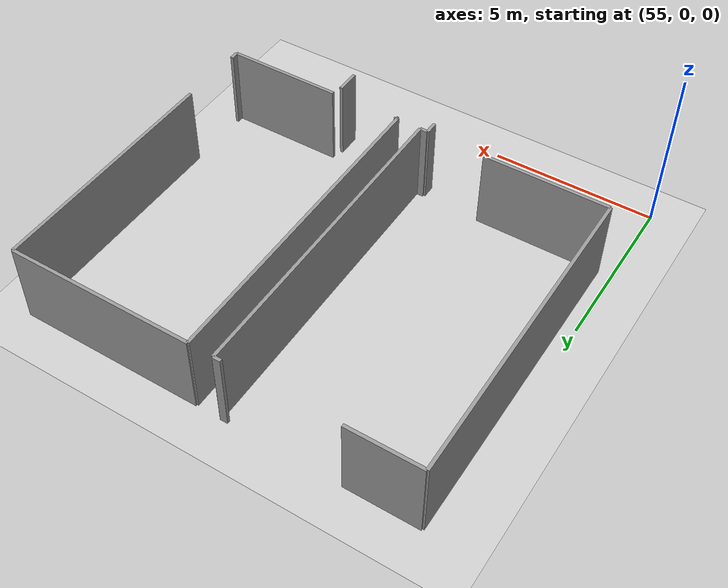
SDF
<sdf version="1.6">
 <world name="default">
  <model name="ground_plane">
   <static>1</static>
   <link name="link">
    <collision name="collision">
     <geometry><plane><normal>0 0 1</normal><size>100 100</size></plane></geometry>
     <surface><friction><ode><mu>100</mu><mu2>50</mu2></ode></friction></surface>
    </collision>
    <visual name="visual">
     <cast_shadows>0</cast_shadows>
     <geometry><plane><normal>0 0 1</normal><size>100 100</size></plane></geometry>
     <material>
      <script><uri>file://media/materials/scripts/gazebo.material</uri><name>Gazebo/Grey</name></script>
     </material>
    </visual>
   </link>
  </model>
  <model name="0510032198_A_40_1_106">
   <static>1</static>
   <link name="Wall_175">
    <collision name="Wall_175_Collision">
     <geometry><box><size>0.0254100547587 0.1 2.5</size></box></geometry>
     <pose>0.0127050273793 0 1.25 0 0 0</pose>
    </collision>
    <visual name="Wall_175_Visual">
     <pose>0.0127050273793 0 1.25 0 0 0</pose>
     <geometry><box><size>0.0254100547587 0.1 2.5</size></box></geometry>
     <material>
      <script><uri>file://media/materials/scripts/gazebo.material</uri><name>Gazebo/Grey</name></script>
      <ambient>1 1 1 1</ambient>
     </material>
    </visual>
    <pose>123.061403397 -9.94384377898 0 0 0 3.14159265359</pose>
   </link>
   <link name="Wall_176">
    <collision name="Wall_176_Collision">
     <geometry><box><size>9.61694342451 0.1 2.5</size></box></geometry>
     <pose>4.80847171226 0 1.25 0 0 0</pose>
    </collision>
    <visual name="Wall_176_Visual">
     <pose>4.80847171226 0 1.25 0 0 0</pose>
     <geometry><box><size>9.61694342451 0.1 2.5</size></box></geometry>
     <material>
      <script><uri>file://media/materials/scripts/gazebo.material</uri><name>Gazebo/Grey</name></script>
      <ambient>1 1 1 1</ambient>
     </material>
    </visual>
    <pose>123.035993343 -9.94384377898 0 0 0 1.57079632679</pose>
   </link>
   <link name="Wall_177">
    <collision name="Wall_177_Collision">
     <geometry><box><size>2.20559275305 0.1 2.5</size></box></geometry>
     <pose>1.10279637653 0 1.25 0 0 0</pose>
    </collision>
    <visual name="Wall_177_Visual">
     <pose>1.10279637653 0 1.25 0 0 0</pose>
     <geometry><box><size>2.20559275305 0.1 2.5</size></box></geometry>
     <material>
      <script><uri>file://media/materials/scripts/gazebo.material</uri><name>Gazebo/Grey</name></script>
      <ambient>1 1 1 1</ambient>
     </material>
    </visual>
    <pose>123.035993343 -0.32690035447 0 0 0 0.0</pose>
   </link>
   <link name="Wall_178">
    <collision name="Wall_178_Collision">
     <geometry><box><size>0.231231498304 0.1 2.5</size></box></geometry>
     <pose>0.115615749152 0 1.25 0 0 0</pose>
    </collision>
    <visual name="Wall_178_Visual">
     <pose>0.115615749152 0 1.25 0 0 0</pose>
     <geometry><box><size>0.231231498304 0.1 2.5</size></box></geometry>
     <material>
      <script><uri>file://media/materials/scripts/gazebo.material</uri><name>Gazebo/Grey</name></script>
      <ambient>1 1 1 1</ambient>
     </material>
    </visual>
    <pose>128.632557903 -0.32690035447 0 0 0 0.0</pose>
   </link>
   <link name="Wall_179">
    <collision name="Wall_179_Collision">
     <geometry><box><size>9.63828787051 0.1 2.5</size></box></geometry>
     <pose>4.81914393526 0 1.25 0 0 0</pose>
    </collision>
    <visual name="Wall_179_Visual">
     <pose>4.81914393526 0 1.25 0 0 0</pose>
     <geometry><box><size>9.63828787051 0.1 2.5</size></box></geometry>
     <material>
      <script><uri>file://media/materials/scripts/gazebo.material</uri><name>Gazebo/Grey</name></script>
      <ambient>1 1 1 1</ambient>
     </material>
    </visual>
    <pose>128.863789401 -0.32690035447 0 0 0 -1.57079632679</pose>
   </link>
   <link name="Wall_180">
    <collision name="Wall_180_Collision">
     <geometry><box><size>0.242666022945 0.1 2.5</size></box></geometry>
     <pose>0.121333011473 0 1.25 0 0 0</pose>
    </collision>
    <visual name="Wall_180_Visual">
     <pose>0.121333011473 0 1.25 0 0 0</pose>
     <geometry><box><size>0.242666022945 0.1 2.5</size></box></geometry>
     <material>
      <script><uri>file://media/materials/scripts/gazebo.material</uri><name>Gazebo/Grey</name></script>
      <ambient>1 1 1 1</ambient>
     </material>
    </visual>
    <pose>128.863789401 -9.96518822498 0 0 0 3.14159265359</pose>
   </link>
   <link name="Wall_181">
    <collision name="Wall_181_Collision">
     <geometry><box><size>0.391568943831 0.1 2.5</size></box></geometry>
     <pose>0.195784471916 0 1.25 0 0 0</pose>
    </collision>
    <visual name="Wall_181_Visual">
     <pose>0.195784471916 0 1.25 0 0 0</pose>
     <geometry><box><size>0.391568943831 0.1 2.5</size></box></geometry>
     <material>
      <script><uri>file://media/materials/scripts/gazebo.material</uri><name>Gazebo/Grey</name></script>
      <ambient>1 1 1 1</ambient>
     </material>
    </visual>
    <pose>128.621123379 -9.96518822498 0 0 0 -1.57079632679</pose>
   </link>
   <link name="Wall_183">
    <collision name="Wall_183_Collision">
     <geometry><box><size>3.75942318548 0.1 2.5</size></box></geometry>
     <pose>1.87971159274 0 1.25 0 0 0</pose>
    </collision>
    <visual name="Wall_183_Visual">
     <pose>1.87971159274 0 1.25 0 0 0</pose>
     <geometry><box><size>3.75942318548 0.1 2.5</size></box></geometry>
     <material>
      <script><uri>file://media/materials/scripts/gazebo.material</uri><name>Gazebo/Grey</name></script>
      <ambient>1 1 1 1</ambient>
     </material>
    </visual>
    <pose>126.820820999 -9.93736421502 0 0 0 -3.13986910004</pose>
   </link>
   <link name="Wall_184">
    <collision name="Wall_184_Collision">
     <geometry><box><size>9.67729230456 0.1 2.5</size></box></geometry>
     <pose>4.83864615228 0 1.25 0 0 0</pose>
    </collision>
    <visual name="Wall_184_Visual">
     <pose>4.83864615228 0 1.25 0 0 0</pose>
     <geometry><box><size>9.67729230456 0.1 2.5</size></box></geometry>
     <material>
      <script><uri>file://media/materials/scripts/gazebo.material</uri><name>Gazebo/Grey</name></script>
      <ambient>1 1 1 1</ambient>
     </material>
    </visual>
    <pose>129.626091044 -10.0113074744 0 0 0 1.57079632679</pose>
   </link>
   <link name="Wall_185">
    <collision name="Wall_185_Collision">
     <geometry><box><size>5.61308109619 0.1 2.5</size></box></geometry>
     <pose>2.80654054809 0 1.25 0 0 0</pose>
    </collision>
    <visual name="Wall_185_Visual">
     <pose>2.80654054809 0 1.25 0 0 0</pose>
     <geometry><box><size>5.61308109619 0.1 2.5</size></box></geometry>
     <material>
      <script><uri>file://media/materials/scripts/gazebo.material</uri><name>Gazebo/Grey</name></script>
      <ambient>1 1 1 1</ambient>
     </material>
    </visual>
    <pose>129.626091044 -0.334015169803 0 0 0 0.0</pose>
   </link>
   <link name="Wall_186">
    <collision name="Wall_186_Collision">
     <geometry><box><size>7.37590364507 0.1 2.5</size></box></geometry>
     <pose>3.68795182254 0 1.25 0 0 0</pose>
    </collision>
    <visual name="Wall_186_Visual">
     <pose>3.68795182254 0 1.25 0 0 0</pose>
     <geometry><box><size>7.37590364507 0.1 2.5</size></box></geometry>
     <material>
      <script><uri>file://media/materials/scripts/gazebo.material</uri><name>Gazebo/Grey</name></script>
      <ambient>1 1 1 1</ambient>
     </material>
    </visual>
    <pose>135.23917214 -0.334015169803 0 0 0 -1.57079632679</pose>
   </link>
   <link name="Wall_187">
    <collision name="Wall_187_Collision">
     <geometry><box><size>0.248383285266 0.1 2.5</size></box></geometry>
     <pose>0.124191642633 0 1.25 0 0 0</pose>
    </collision>
    <visual name="Wall_187_Visual">
     <pose>0.124191642633 0 1.25 0 0 0</pose>
     <geometry><box><size>0.248383285266 0.1 2.5</size></box></geometry>
     <material>
      <script><uri>file://media/materials/scripts/gazebo.material</uri><name>Gazebo/Grey</name></script>
      <ambient>1 1 1 1</ambient>
     </material>
    </visual>
    <pose>135.23917214 -9.71159587849 0 0 0 -1.57079632679</pose>
   </link>
   <link name="Wall_188">
    <collision name="Wall_188_Collision">
     <geometry><box><size>3.46466096634 0.1 2.5</size></box></geometry>
     <pose>1.73233048317 0 1.25 0 0 0</pose>
    </collision>
    <visual name="Wall_188_Visual">
     <pose>1.73233048317 0 1.25 0 0 0</pose>
     <geometry><box><size>3.46466096634 0.1 2.5</size></box></geometry>
     <material>
      <script><uri>file://media/materials/scripts/gazebo.material</uri><name>Gazebo/Grey</name></script>
      <ambient>1 1 1 1</ambient>
     </material>
    </visual>
    <pose>135.23917214 -9.95997916376 0 0 0 3.14159265359</pose>
   </link>
   <link name="Wall_189">
    <collision name="Wall_189_Collision">
     <geometry><box><size>0.0500578078746 0.1 2.5</size></box></geometry>
     <pose>0.0250289039373 0 1.25 0 0 0</pose>
    </collision>
    <visual name="Wall_189_Visual">
     <pose>0.0250289039373 0 1.25 0 0 0</pose>
     <geometry><box><size>0.0500578078746 0.1 2.5</size></box></geometry>
     <material>
      <script><uri>file://media/materials/scripts/gazebo.material</uri><name>Gazebo/Grey</name></script>
      <ambient>1 1 1 1</ambient>
     </material>
    </visual>
    <pose>129.679452159 -9.95997916376 0 0 0 -1.57079632679</pose>
   </link>
   <link name="Wall_190">
    <collision name="Wall_190_Collision">
     <geometry><box><size>0.0533762378828 0.1 2.5</size></box></geometry>
     <pose>0.0266881189414 0 1.25 0 0 0</pose>
    </collision>
    <visual name="Wall_190_Visual">
     <pose>0.0266881189414 0 1.25 0 0 0</pose>
     <geometry><box><size>0.0533762378828 0.1 2.5</size></box></geometry>
     <material>
      <script><uri>file://media/materials/scripts/gazebo.material</uri><name>Gazebo/Grey</name></script>
      <ambient>1 1 1 1</ambient>
     </material>
    </visual>
    <pose>129.679452159 -10.0100369716 0 0 0 -3.1177876274</pose>
   </link>
   <link name="Wall_363">
    <collision name="Wall_363_Collision">
     <geometry><box><size>0.711862684064 0.1 2.5</size></box></geometry>
     <pose>0.355931342032 0 1.25 0 0 0</pose>
    </collision>
    <visual name="Wall_363_Visual">
     <pose>0.355931342032 0 1.25 0 0 0</pose>
     <geometry><box><size>0.711862684064 0.1 2.5</size></box></geometry>
     <material>
      <script><uri>file://media/materials/scripts/gazebo.material</uri><name>Gazebo/Grey</name></script>
      <ambient>1 1 1 1</ambient>
     </material>
    </visual>
    <pose>131.708445032 -10.2715064351 0 0 0 -1.57079632679</pose>
   </link>
   <pose>-67.6 12.6852799553 0 0 0 0</pose>
  </model>
 </world>
</sdf>
